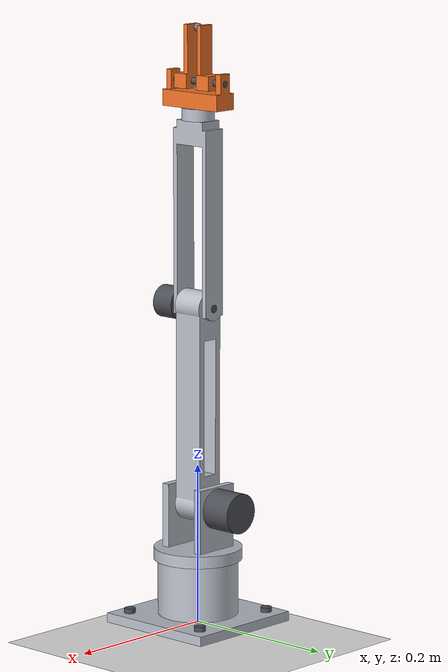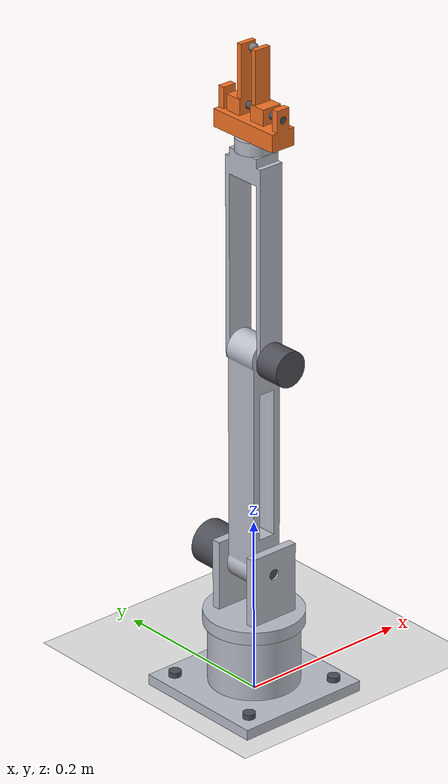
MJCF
<mujoco model="arm4">
  <compiler angle="radian" meshdir="../meshes" autolimits="true" />
  <option timestep="0.002" integrator="implicitfast" />
  <default>
    <default class="visual">
      <geom contype="0" conaffinity="0" group="2" density="0" />
    </default>
    <default class="collision">
      <geom group="3" friction="1 0.005 0.0001" condim="4" density="0" rgba="0.2 0.6 1 0.4" />
    </default>
  </default>
  <asset>
    <material name="aluminum" rgba="0.72 0.74 0.78 1" />
    <material name="steel" rgba="0.30 0.31 0.34 1" />
    <material name="pla" rgba="0.95 0.45 0.15 1" />
    <mesh name="base_link_aluminum" file="visual/base_link_aluminum.stl" />
    <mesh name="base_link_steel" file="visual/base_link_steel.stl" />
    <mesh name="turret_aluminum" file="visual/turret_aluminum.stl" />
    <mesh name="turret_steel" file="visual/turret_steel.stl" />
    <mesh name="turret_col0" file="collision/turret_0.stl" />
    <mesh name="upper_arm_aluminum" file="visual/upper_arm_aluminum.stl" />
    <mesh name="upper_arm_steel" file="visual/upper_arm_steel.stl" />
    <mesh name="upper_arm_col0" file="collision/upper_arm_0.stl" />
    <mesh name="upper_arm_col1" file="collision/upper_arm_1.stl" />
    <mesh name="upper_arm_col2" file="collision/upper_arm_2.stl" />
    <mesh name="upper_arm_col3" file="collision/upper_arm_3.stl" />
    <mesh name="upper_arm_col4" file="collision/upper_arm_4.stl" />
    <mesh name="upper_arm_col5" file="collision/upper_arm_5.stl" />
    <mesh name="upper_arm_col6" file="collision/upper_arm_6.stl" />
    <mesh name="upper_arm_col7" file="collision/upper_arm_7.stl" />
    <mesh name="upper_arm_col8" file="collision/upper_arm_8.stl" />
    <mesh name="upper_arm_col9" file="collision/upper_arm_9.stl" />
    <mesh name="upper_arm_col10" file="collision/upper_arm_10.stl" />
    <mesh name="upper_arm_col11" file="collision/upper_arm_11.stl" />
    <mesh name="upper_arm_col12" file="collision/upper_arm_12.stl" />
    <mesh name="forearm_aluminum" file="visual/forearm_aluminum.stl" />
    <mesh name="forearm_steel" file="visual/forearm_steel.stl" />
    <mesh name="gripper_base_aluminum" file="visual/gripper_base_aluminum.stl" />
    <mesh name="gripper_base_pla" file="visual/gripper_base_pla.stl" />
    <mesh name="gripper_base_steel" file="visual/gripper_base_steel.stl" />
    <mesh name="finger_left_pla" file="visual/finger_left_pla.stl" />
    <mesh name="finger_left_col0" file="collision/finger_left_0.stl" />
    <mesh name="finger_left_col1" file="collision/finger_left_1.stl" />
    <mesh name="finger_left_col2" file="collision/finger_left_2.stl" />
    <mesh name="finger_left_col3" file="collision/finger_left_3.stl" />
    <mesh name="finger_left_col4" file="collision/finger_left_4.stl" />
    <mesh name="finger_left_col5" file="collision/finger_left_5.stl" />
    <mesh name="finger_right_pla" file="visual/finger_right_pla.stl" />
    <mesh name="finger_right_col0" file="collision/finger_right_0.stl" />
    <mesh name="finger_right_col1" file="collision/finger_right_1.stl" />
    <mesh name="finger_right_col2" file="collision/finger_right_2.stl" />
    <mesh name="finger_right_col3" file="collision/finger_right_3.stl" />
    <mesh name="finger_right_col4" file="collision/finger_right_4.stl" />
    <mesh name="finger_right_col5" file="collision/finger_right_5.stl" />
  </asset>
  <worldbody>
    <light pos="0 0 3" dir="0 0 -1" directional="true" />
    <geom name="floor" type="plane" size="10 10 0.1" rgba="0.9 0.9 0.9 1" />
    <body name="base_link" pos="0 0 0" quat="1 0 0 0">
      <inertial pos="0 0 0.031319" mass="2.31588" fullinertia="0.00430245 0.00430245 0.00567686 0 0 0" />
      <geom class="visual" type="mesh" mesh="base_link_aluminum" material="aluminum" />
      <geom class="visual" type="mesh" mesh="base_link_steel" material="steel" />
      <geom class="collision" name="base_link_col0" pos="0 0 0.006" quat="1 0 0 0" type="box" size="0.08 0.08 0.006" />
      <geom class="collision" name="base_link_col1" pos="0 0 0.047" quat="1 0 0 0" type="cylinder" size="0.05 0.035" />
      <body name="turret" pos="0 0 0.072" quat="1 0 0 0">
        <inertial pos="0 0.0248244 0.0551163" mass="1.29147" fullinertia="0.00267835 0.00171247 0.00190016 0 0 -0.000733649" />
        <joint name="shoulder_yaw" type="hinge" axis="0 0 1" damping="0.5" frictionloss="0.05" armature="0.01" range="-2.97 2.97" actuatorfrcrange="-40 40" />
        <geom class="visual" type="mesh" mesh="turret_aluminum" material="aluminum" />
        <geom class="visual" type="mesh" mesh="turret_steel" material="steel" />
        <geom class="collision" name="turret_col0" type="mesh" mesh="turret_col0" />
        <geom class="collision" name="turret_col1" pos="0 0.027 0.065" quat="1 0 0 0" type="box" size="0.03 0.005 0.04" />
        <geom class="collision" name="turret_col2" pos="0 -0.027 0.065" quat="1 0 0 0" type="box" size="0.03 0.005 0.04" />
        <geom class="collision" name="turret_col3" pos="0 0.052 0.078" quat="0.5 0.5 0.5 -0.5" type="cylinder" size="0.025 0.02" />
        <body name="upper_arm" pos="0 0 0.078" quat="1 0 0 0">
          <inertial pos="0 0 0.116984" mass="0.77782" fullinertia="0.00724199 0.00723782 0.000221003 0 0 0" />
          <joint name="shoulder_pitch" type="hinge" axis="0 1 0" damping="0.5" frictionloss="0.05" armature="0.01" range="-1.75 1.75" actuatorfrcrange="-40 40" />
          <geom class="visual" type="mesh" mesh="upper_arm_aluminum" material="aluminum" />
          <geom class="visual" type="mesh" mesh="upper_arm_steel" material="steel" />
          <geom class="collision" name="upper_arm_col0" type="mesh" mesh="upper_arm_col0" />
          <geom class="collision" name="upper_arm_col1" type="mesh" mesh="upper_arm_col1" />
          <geom class="collision" name="upper_arm_col2" type="mesh" mesh="upper_arm_col2" />
          <geom class="collision" name="upper_arm_col3" type="mesh" mesh="upper_arm_col3" />
          <geom class="collision" name="upper_arm_col4" type="mesh" mesh="upper_arm_col4" />
          <geom class="collision" name="upper_arm_col5" type="mesh" mesh="upper_arm_col5" />
          <geom class="collision" name="upper_arm_col6" type="mesh" mesh="upper_arm_col6" />
          <geom class="collision" name="upper_arm_col7" type="mesh" mesh="upper_arm_col7" />
          <geom class="collision" name="upper_arm_col8" type="mesh" mesh="upper_arm_col8" />
          <geom class="collision" name="upper_arm_col9" type="mesh" mesh="upper_arm_col9" />
          <geom class="collision" name="upper_arm_col10" type="mesh" mesh="upper_arm_col10" />
          <geom class="collision" name="upper_arm_col11" type="mesh" mesh="upper_arm_col11" />
          <geom class="collision" name="upper_arm_col12" type="mesh" mesh="upper_arm_col12" />
          <body name="forearm" pos="0 0 0.25" quat="1 0 0 0">
            <inertial pos="0 -0.0192266 0.0673338" mass="0.646467" fullinertia="0.00531903 0.00491554 0.000511767 0 0 -0.000836919" />
            <joint name="elbow" type="hinge" axis="0 1 0" damping="0.5" frictionloss="0.05" armature="0.01" range="-2.35 2.35" actuatorfrcrange="-20 20" />
            <geom class="visual" type="mesh" mesh="forearm_aluminum" material="aluminum" />
            <geom class="visual" type="mesh" mesh="forearm_steel" material="steel" />
            <geom class="collision" name="forearm_col0" pos="0 0.024 0.1025" quat="1 0 0 0" type="box" size="0.015 0.003 0.1175" />
            <geom class="collision" name="forearm_col1" pos="0 -0.024 0.1025" quat="1 0 0 0" type="box" size="0.015 0.003 0.1175" />
            <geom class="collision" name="forearm_col2" pos="0 0 0.215" quat="1 0 0 0" type="box" size="0.015 0.021 0.015" />
            <geom class="collision" name="forearm_col3" pos="0 0 0" quat="-0.5 0.5 0.5 0.5" type="cylinder" size="0.005 0.027" />
            <geom class="collision" name="forearm_col4" pos="0 -0.042 0" quat="0.5 -0.5 0.5 0.5" type="cylinder" size="0.02 0.015" />
            <body name="gripper_base" pos="0 0 0.2225" quat="1 0 0 0">
              <inertial pos="0 0 0.0311419" mass="0.168131" fullinertia="0.000133667 5.86549e-05 9.60966e-05 0 0 0" />
              <joint name="wrist_roll" type="hinge" axis="0 0 1" damping="0.5" frictionloss="0.05" armature="0.01" range="-3.14 3.14" actuatorfrcrange="-5 5" />
              <geom class="visual" type="mesh" mesh="gripper_base_aluminum" material="aluminum" />
              <geom class="visual" type="mesh" mesh="gripper_base_pla" material="pla" />
              <geom class="visual" type="mesh" mesh="gripper_base_steel" material="steel" />
              <geom class="collision" name="gripper_base_col0" pos="0 0 0.0075" quat="0 0 1 0" type="cylinder" size="0.02 0.015" />
              <geom class="collision" name="gripper_base_col1" pos="0 0 0.0325" quat="1 0 0 0" type="box" size="0.015 0.045 0.01" />
              <geom class="collision" name="gripper_base_col2" pos="0 0 0.0545" quat="-0.5 0.5 0.5 0.5" type="cylinder" size="0.004 0.045" />
              <geom class="collision" name="gripper_base_col3" pos="0 0.041 0.0545" quat="1 0 0 0" type="box" size="0.008 0.004 0.012" />
              <geom class="collision" name="gripper_base_col4" pos="0 -0.041 0.0545" quat="1 0 0 0" type="box" size="0.008 0.004 0.012" />
              <body name="finger_left" pos="0 0.018 0.0545" quat="1 0 0 0">
                <inertial pos="0 -0.00340914 0.0189938" mass="0.0183319" fullinertia="1.04928e-05 1.07345e-05 1.37101e-06 0 0 1.25031e-06" />
                <joint name="finger_left" type="slide" axis="0 1 0" damping="2" frictionloss="0.5" armature="0.001" range="-0.006 0.008" actuatorfrcrange="-20 20" />
                <geom class="visual" type="mesh" mesh="finger_left_pla" material="pla" />
                <geom class="collision" name="finger_left_col0" type="mesh" mesh="finger_left_col0" />
                <geom class="collision" name="finger_left_col1" type="mesh" mesh="finger_left_col1" />
                <geom class="collision" name="finger_left_col2" type="mesh" mesh="finger_left_col2" />
                <geom class="collision" name="finger_left_col3" type="mesh" mesh="finger_left_col3" />
                <geom class="collision" name="finger_left_col4" type="mesh" mesh="finger_left_col4" />
                <geom class="collision" name="finger_left_col5" type="mesh" mesh="finger_left_col5" />
              </body>
              <body name="finger_right" pos="0 -0.018 0.0545" quat="1 0 0 0">
                <inertial pos="0 0.00340914 0.0189938" mass="0.0183319" fullinertia="1.04928e-05 1.07345e-05 1.37101e-06 0 0 -1.25031e-06" />
                <joint name="finger_right" type="slide" axis="0 -1 0" damping="2" frictionloss="0.5" armature="0.001" range="-0.006 0.008" actuatorfrcrange="-20 20" />
                <geom class="visual" type="mesh" mesh="finger_right_pla" material="pla" />
                <geom class="collision" name="finger_right_col0" type="mesh" mesh="finger_right_col0" />
                <geom class="collision" name="finger_right_col1" type="mesh" mesh="finger_right_col1" />
                <geom class="collision" name="finger_right_col2" type="mesh" mesh="finger_right_col2" />
                <geom class="collision" name="finger_right_col3" type="mesh" mesh="finger_right_col3" />
                <geom class="collision" name="finger_right_col4" type="mesh" mesh="finger_right_col4" />
                <geom class="collision" name="finger_right_col5" type="mesh" mesh="finger_right_col5" />
              </body>
              <site name="tcp" pos="0 0 0.12" size="0.005" />
            </body>
          </body>
        </body>
      </body>
    </body>
  </worldbody>
  <contact>
    <exclude body1="base_link" body2="turret" />
    <exclude body1="finger_left" body2="gripper_base" />
    <exclude body1="finger_right" body2="gripper_base" />
    <exclude body1="forearm" body2="gripper_base" />
    <exclude body1="forearm" body2="upper_arm" />
    <exclude body1="turret" body2="upper_arm" />
  </contact>
  <equality>
    <joint joint1="finger_right" joint2="finger_left" polycoef="0 1 0 0 0" />
  </equality>
  <actuator>
    <position name="shoulder_yaw" joint="shoulder_yaw" kp="200" kv="10" ctrlrange="-2.97 2.97" forcerange="-40 40" />
    <position name="shoulder_pitch" joint="shoulder_pitch" kp="200" kv="10" ctrlrange="-1.75 1.75" forcerange="-40 40" />
    <position name="elbow" joint="elbow" kp="200" kv="10" ctrlrange="-2.35 2.35" forcerange="-20 20" />
    <position name="wrist_roll" joint="wrist_roll" kp="20" kv="1" ctrlrange="-3.14 3.14" forcerange="-5 5" />
    <position name="finger_left" joint="finger_left" kp="500" kv="20" ctrlrange="-0.006 0.008" forcerange="-20 20" />
  </actuator>
  <keyframe>
    <key name="home" qpos="0 0 0 0 0 0" ctrl="0 0 0 0 0" />
    <key name="ready" qpos="0 0.6 1.2 0 0 0" ctrl="0 0.6 1.2 0 0" />
    <key name="open" qpos="0 0 0 0 0.008 0.008" ctrl="0 0 0 0 0.008" />
    <key name="closed" qpos="0 0 0 0 -0.006 -0.006" ctrl="0 0 0 0 -0.006" />
  </keyframe>
</mujoco>
